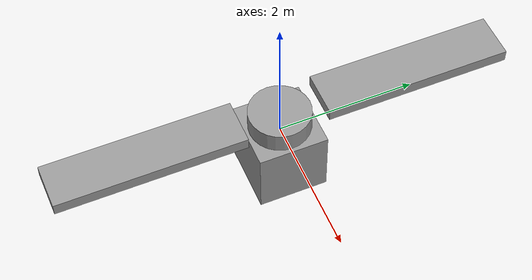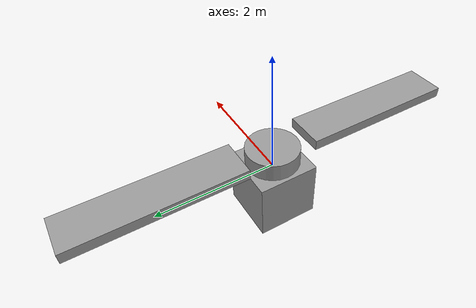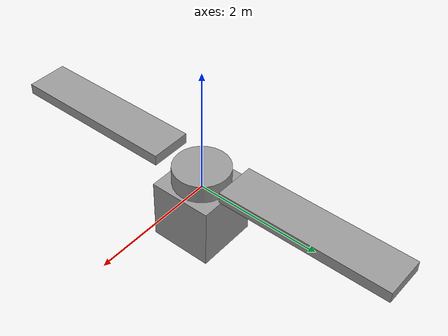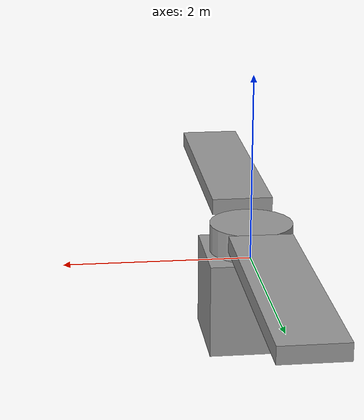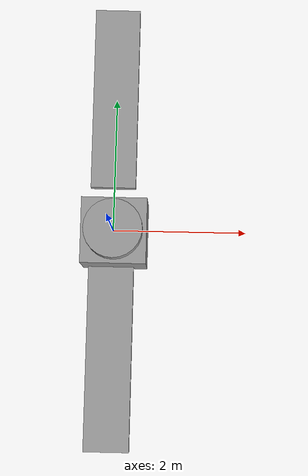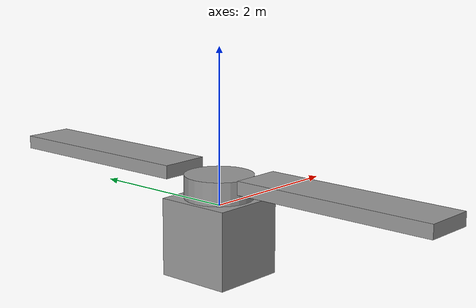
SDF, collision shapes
<?xml version='1.0'?>
<sdf version='1.7'>
  <model name='MN801S-150KV-APC2015-SAMA-FW25'>
    <link name='link_0'>
      <inertial>
        <mass>0.48</mass>
        <inertia>
          <ixx>0.000696</ixx>
          <ixy>0</ixy>
          <ixz>0</ixz>
          <iyy>0.000696</iyy>
          <iyz>0</iyz>
          <izz>0.000475</izz>
        </inertia>
        <pose>0 0 0 0 -0 0</pose>
      </inertial>
      <pose>0 0 0.1 0 -0 0</pose>
      <gravity>1</gravity>
      <self_collide>0</self_collide>
      <kinematic>0</kinematic>
      <enable_wind>0</enable_wind>
      <visual name='visual'>
        <pose>0 0 0 0 -0 0</pose>
        <geometry>
          <mesh>
            <uri>/home/rwxxx/catkin_ws/src/Euler_Drone_Sim/simulacao/models/Partes/Motor_FW25_VTOL.dae</uri>
            <scale>1 1 1</scale>
          </mesh>
        </geometry>
        <material>
          <lighting>1</lighting>
          <script>
            <uri>file://media/materials/scripts/gazebo.material</uri>
            <name>Gazebo/Grey</name>
          </script>
          <shader type='pixel'>
            <normal_map>__default__</normal_map>
          </shader>
          <emissive>0 0 0 1</emissive>
          <ambient>0.3 0.3 0.3 1</ambient>
          <diffuse>0.7 0.7 0.7 1</diffuse>
          <specular>0.01 0.01 0.01 1</specular>
        </material>
        <transparency>0</transparency>
        <cast_shadows>1</cast_shadows>
      </visual>
      <collision name='collision_1'>
        <laser_retro>0</laser_retro>
        <max_contacts>10</max_contacts>
        <pose>0 0 0.15 0 -0 0</pose>
        <geometry>
          <cylinder>
            <radius>0.445</radius>
            <length>0.3</length>
          </cylinder>
        </geometry>
        <surface>
          <friction>
            <ode>
              <mu>1</mu>
              <mu2>1</mu2>
              <fdir1>0 0 0</fdir1>
              <slip1>0</slip1>
              <slip2>0</slip2>
            </ode>
            <torsional>
              <coefficient>1</coefficient>
              <patch_radius>0</patch_radius>
              <surface_radius>0</surface_radius>
              <use_patch_radius>1</use_patch_radius>
              <ode>
                <slip>0</slip>
              </ode>
            </torsional>
          </friction>
          <bounce>
            <restitution_coefficient>0</restitution_coefficient>
            <threshold>1e+06</threshold>
          </bounce>
          <contact>
            <collide_without_contact>0</collide_without_contact>
            <collide_without_contact_bitmask>1</collide_without_contact_bitmask>
            <collide_bitmask>1</collide_bitmask>
            <ode>
              <soft_cfm>0</soft_cfm>
              <soft_erp>0.2</soft_erp>
              <kp>1e+13</kp>
              <kd>1</kd>
              <max_vel>0.01</max_vel>
              <min_depth>0</min_depth>
            </ode>
            <bullet>
              <split_impulse>1</split_impulse>
              <split_impulse_penetration_threshold>-0.01</split_impulse_penetration_threshold>
              <soft_cfm>0</soft_cfm>
              <soft_erp>0.2</soft_erp>
              <kp>1e+13</kp>
              <kd>1</kd>
            </bullet>
          </contact>
        </surface>
      </collision>
    </link>

    <link name='link_1'>
      <inertial>
        <mass>100</mass>
        <inertia>
          <ixx>16.6667</ixx>
          <ixy>0</ixy>
          <ixz>0</ixz>
          <iyy>16.6667</iyy>
          <iyz>0</iyz>
          <izz>16.6667</izz>
        </inertia>
        <pose>0 0 0 0 -0 0</pose>
      </inertial>
      <pose>0 0 -0.4 0 -0 0</pose>
      <gravity>1</gravity>
      <self_collide>0</self_collide>
      <kinematic>0</kinematic>
      <enable_wind>0</enable_wind>
      <visual name='visual'>
        <pose>0 0 0 0 -0 0</pose>
        <geometry>
          <box>
            <size>1 1 1</size>
          </box>
        </geometry>
        <material>
          <lighting>1</lighting>
          <script>
            <uri>file://media/materials/scripts/gazebo.material</uri>
            <name>Gazebo/Grey</name>
          </script>
          <shader type='pixel'>
            <normal_map>__default__</normal_map>
          </shader>
          <emissive>0 0 0 1</emissive>
          <ambient>0.3 0.3 0.3 1</ambient>
          <diffuse>0.7 0.7 0.7 1</diffuse>
          <specular>0.01 0.01 0.01 1</specular>
        </material>
        <transparency>0</transparency>
        <cast_shadows>1</cast_shadows>
      </visual>
      <collision name='collision'>
        <laser_retro>0</laser_retro>
        <max_contacts>10</max_contacts>
        <pose>0 0 0 0 -0 0</pose>
        <geometry>
          <box>
            <size>1 1 1</size>
          </box>
        </geometry>
        <surface>
          <friction>
            <ode>
              <mu>1</mu>
              <mu2>1</mu2>
              <fdir1>0 0 0</fdir1>
              <slip1>0</slip1>
              <slip2>0</slip2>
            </ode>
            <torsional>
              <coefficient>1</coefficient>
              <patch_radius>0</patch_radius>
              <surface_radius>0</surface_radius>
              <use_patch_radius>1</use_patch_radius>
              <ode>
                <slip>0</slip>
              </ode>
            </torsional>
          </friction>
          <bounce>
            <restitution_coefficient>0</restitution_coefficient>
            <threshold>1e+06</threshold>
          </bounce>
          <contact>
            <collide_without_contact>0</collide_without_contact>
            <collide_without_contact_bitmask>1</collide_without_contact_bitmask>
            <collide_bitmask>1</collide_bitmask>
            <ode>
              <soft_cfm>0</soft_cfm>
              <soft_erp>0.2</soft_erp>
              <kp>1e+13</kp>
              <kd>1</kd>
              <max_vel>0.01</max_vel>
              <min_depth>0</min_depth>
            </ode>
            <bullet>
              <split_impulse>1</split_impulse>
              <split_impulse_penetration_threshold>-0.01</split_impulse_penetration_threshold>
              <soft_cfm>0</soft_cfm>
              <soft_erp>0.2</soft_erp>
              <kp>1e+13</kp>
              <kd>1</kd>
            </bullet>
          </contact>
        </surface>
      </collision>
    </link>

    <link name='link_5'>
      <inertial>
        <mass>1</mass>
        <inertia>
          <ixx>0.00077</ixx>
          <ixy>0</ixy>
          <ixz>0</ixz>
          <iyy>0.00077</iyy>
          <iyz>0</iyz>
          <izz>0.00154</izz>
        </inertia>
        <pose>0 0 0 0 -0 0</pose>
      </inertial>
      <pose>0 0 0.3 0 -0 0</pose>
      <gravity>1</gravity>
      <self_collide>0</self_collide>
      <kinematic>0</kinematic>
      <enable_wind>0</enable_wind>
      <visual name='visual'>
        <pose>0 0 0 0 -0 0</pose>
        <geometry>
          <mesh>
            <uri>/home/rwxxx/catkin_ws/src/Euler_Drone_Sim/simulacao/models/Partes/Helice_FW25_CCW_VTOL_2.dae</uri>
            <scale>1 1 1</scale>
          </mesh>
        </geometry>
        <material>
          <lighting>1</lighting>
          <script>
            <uri>file://media/materials/scripts/gazebo.material</uri>
            <name>Gazebo/Grey</name>
          </script>
          <shader type='pixel'>
            <normal_map>__default__</normal_map>
          </shader>
          <ambient>0.3 0.3 0.3 1</ambient>
          <diffuse>0.7 0.7 0.7 1</diffuse>
          <specular>0.01 0.01 0.01 1</specular>
          <emissive>0 0 0 1</emissive>
        </material>
        <transparency>0</transparency>
        <cast_shadows>1</cast_shadows>
      </visual>
      <collision name='collision_1'>
        <laser_retro>0</laser_retro>
        <max_contacts>10</max_contacts>
        <pose>0 -1.94 0.086806 0 -0 0</pose>
        <geometry>
          <box>
            <size>0.666766 2.7 0.173612</size>
          </box>
        </geometry>
        <surface>
          <friction>
            <ode>
              <mu>1</mu>
              <mu2>1</mu2>
              <fdir1>0 0 0</fdir1>
              <slip1>0</slip1>
              <slip2>0</slip2>
            </ode>
            <torsional>
              <coefficient>1</coefficient>
              <patch_radius>0</patch_radius>
              <surface_radius>0</surface_radius>
              <use_patch_radius>1</use_patch_radius>
              <ode>
                <slip>0</slip>
              </ode>
            </torsional>
          </friction>
          <bounce>
            <restitution_coefficient>0</restitution_coefficient>
            <threshold>1e+06</threshold>
          </bounce>
          <contact>
            <collide_without_contact>0</collide_without_contact>
            <collide_without_contact_bitmask>1</collide_without_contact_bitmask>
            <collide_bitmask>1</collide_bitmask>
            <ode>
              <soft_cfm>0</soft_cfm>
              <soft_erp>0.2</soft_erp>
              <kp>1e+13</kp>
              <kd>1</kd>
              <max_vel>0.01</max_vel>
              <min_depth>0</min_depth>
            </ode>
            <bullet>
              <split_impulse>1</split_impulse>
              <split_impulse_penetration_threshold>-0.01</split_impulse_penetration_threshold>
              <soft_cfm>0</soft_cfm>
              <soft_erp>0.2</soft_erp>
              <kp>1e+13</kp>
              <kd>1</kd>
            </bullet>
          </contact>
        </surface>
      </collision>
      <collision name='collision_2'>
        <laser_retro>0</laser_retro>
        <max_contacts>10</max_contacts>
        <pose>0 1.94 0.086806 0 -0 0</pose>
        <geometry>
          <box>
            <size>0.666766 2.7 0.173612</size>
          </box>
        </geometry>
        <surface>
          <friction>
            <ode>
              <mu>1</mu>
              <mu2>1</mu2>
              <fdir1>0 0 0</fdir1>
              <slip1>0</slip1>
              <slip2>0</slip2>
            </ode>
            <torsional>
              <coefficient>1</coefficient>
              <patch_radius>0</patch_radius>
              <surface_radius>0</surface_radius>
              <use_patch_radius>1</use_patch_radius>
              <ode>
                <slip>0</slip>
              </ode>
            </torsional>
          </friction>
          <bounce>
            <restitution_coefficient>0</restitution_coefficient>
            <threshold>1e+06</threshold>
          </bounce>
          <contact>
            <collide_without_contact>0</collide_without_contact>
            <collide_without_contact_bitmask>1</collide_without_contact_bitmask>
            <collide_bitmask>1</collide_bitmask>
            <ode>
              <soft_cfm>0</soft_cfm>
              <soft_erp>0.2</soft_erp>
              <kp>1e+13</kp>
              <kd>1</kd>
              <max_vel>0.01</max_vel>
              <min_depth>0</min_depth>
            </ode>
            <bullet>
              <split_impulse>1</split_impulse>
              <split_impulse_penetration_threshold>-0.01</split_impulse_penetration_threshold>
              <soft_cfm>0</soft_cfm>
              <soft_erp>0.2</soft_erp>
              <kp>1e+13</kp>
              <kd>1</kd>
            </bullet>
          </contact>
        </surface>
      </collision>
    </link>
    <joint name='link_0_JOINT_1' type='fixed'>
      <parent>link_0</parent>
      <child>link_5</child>
      <pose>0 0 0 0 -0 0</pose>
      <physics>
        <ode>
          <limit>
            <cfm>0</cfm>
            <erp>0.2</erp>
          </limit>
          <suspension>
            <cfm>0</cfm>
            <erp>0.2</erp>
          </suspension>
        </ode>
      </physics>
    </joint>
    <joint name='link_1_JOINT_0' type='revolute'>
      <parent>link_1</parent>
      <child>link_0</child>
      <pose>0 0 0 0 -0 0</pose>
      <axis>
        <xyz>0 0 1</xyz>
        <limit>
          <lower>-1.79769e+308</lower>
          <upper>1.79769e+308</upper>
          <effort>-1</effort>
          <velocity>-1</velocity>
        </limit>
        <dynamics>
          <spring_reference>0</spring_reference>
          <spring_stiffness>0</spring_stiffness>
          <damping>0</damping>
        </dynamics>
      </axis>
      <physics>
        <ode>
          <limit>
            <cfm>0</cfm>
            <erp>0.2</erp>
          </limit>
          <suspension>
            <cfm>0</cfm>
            <erp>0.2</erp>
          </suspension>
        </ode>
      </physics>
    </joint>
    <static>0</static>
    <allow_auto_disable>1</allow_auto_disable>
  </model>

	<plugin name="euler_batt_plugin" filename="libeuler_batt_plugin.so">
		<!-- Tipo de bateria: 'Welion', 'LiPo', 'LiIon' ou outro definido no plugin -->
		<batteryType>LiPo</batteryType>

		<!-- Número de células em série (S) -->
		<S>14</S>

		<!-- Número de células em paralelo (P) -->
		<P>13</P>

		<!-- Nome do link onde a massa da bateria será atribuída -->
		<nomeLink>link_1</nomeLink>

		<!-- Tópico ROS onde a tensão disponível será publicada -->
		<TopicoTensao>/battery/voltage</TopicoTensao>

		<!-- Tópico ROS onde o estado da bateria será publicado -->
		<EstadoBattPubTopic>/battery/state</EstadoBattPubTopic>

		<numRotores>1</numRotores>

	</plugin>

	<plugin name="euler_motor_plugin_v2" filename="libeuler_mot_plugin_v2.so">
		<listen_addr>0.0.0.0</listen_addr>
		<fdm_port_in>9002</fdm_port_in>

		<motor channel="0">
		  <joint_name>propeller_joint</joint_name> <KV_rpm>77</KV_rpm>
		  <R>0.116</R>
		  <L>0.004</L>
		  <pwm_min>1000</pwm_min>
		  <pwm_max>2000</pwm_max>
		  </motor>
    </plugin>

	<plugin name="rotor_X_blade_1" filename="libLiftDragPlugin.so">
      <a0>0.1</a0>
      <alpha_stall>0.26</alpha_stall>
      <cla>5.5</cla>
      <cda>0.08</cda>
      <cma>0.0</cma>
      <cla_stall>-0.02</cla_stall>
      <cda_stall>0.0</cda_stall>
      <cma_stall>0.0</cma_stall>
      <area>0.01</area> <air_density>1.225</air_density>
      <cp>0.178 0 0</cp> <forward>0 1 0</forward>
      <upward>0 0 1</upward>
      <link_name>link_0</link_name>
    </plugin>
    <plugin name="rotor_X_blade_2" filename="libLiftDragPlugin.so">
      <a0>0.1</a0>
      <alpha_stall>0.26</alpha_stall>
      <cla>5.5</cla>
      <cda>0.08</cda>
      <cma>0.0</cma>
      <cla_stall>-0.02</cla_stall>
      <cda_stall>0.0</cda_stall>
      <cma_stall>0.0</cma_stall>
      <area>0.01</area>
      <air_density>1.225</air_density>
      <cp>-0.178 0 0</cp>
      <forward>0 -1 0</forward>
      <upward>0 0 1</upward>
      <link_name>link_0</link_name>
    </plugin>

</sdf>
